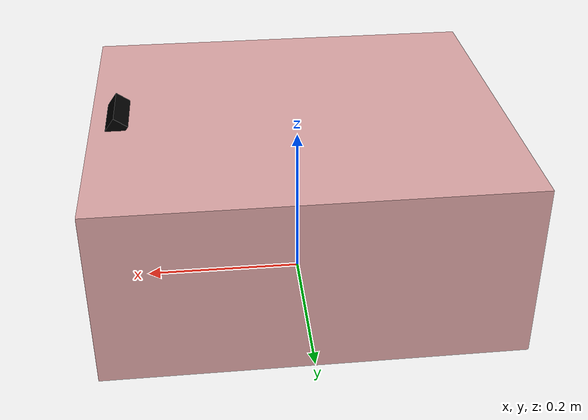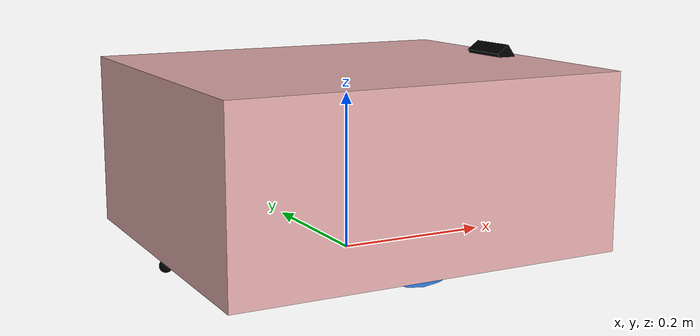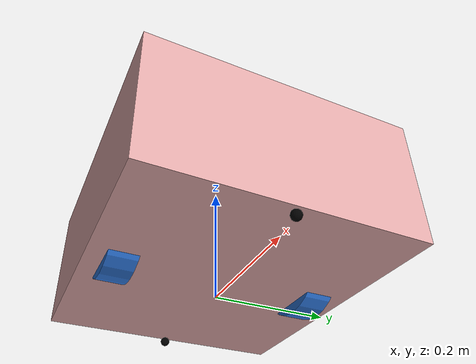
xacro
<?xml version="1.0"?>
<robot name="robot" xmlns:xacro="http://ros.org/wiki/xacro">

  <xacro:include filename="$(find description)/urdf/controllers/diff_drive_controller.urdf.xacro" />
  <xacro:include filename="$(find description)/urdf/property/robot_property.urdf.xacro" />
  <xacro:include filename="$(find description)/urdf/mech/base.urdf.xacro" />
  <xacro:include filename="$(find description)/urdf/mech/wheel.urdf.xacro" />
  <xacro:include filename="$(find description)/urdf/mech/caster_wheel.urdf.xacro" />
  <xacro:include filename="$(find description)/urdf/sensors/imu.urdf.xacro" />
  <xacro:include filename="$(find description)/urdf/sensors/laser.urdf.xacro" />
  <xacro:include filename="$(find description)/urdf/sensors/camera.urdf.xacro" />
  <xacro:include filename="$(find description)/urdf/sensors/range_sensor.urdf.xacro" />

  <xacro:base
    length="${base_length}"
    width="${base_width}"
    height="${base_height}"
    mass="${base_mass}"
    wheel_radius="${wheel_radius}"
    wheel_pos_x="${wheel_pos_x}"
    wheel_pos_z="${wheel_pos_z}"
/>

  <xacro:wheel
    side="left"
    radius="${wheel_radius}"
    width="${wheel_width}"
    pos_x="${wheel_pos_x}"
    pos_y="${wheel_pos_y}"
    pos_z="${wheel_pos_z}"
    mass="${wheel_mass}"
  />

  <xacro:wheel
    side="right"
    radius="${wheel_radius}"
    width="${wheel_width}"
    pos_x="${wheel_pos_x}"
    pos_y="${-wheel_pos_y}"
    pos_z="${wheel_pos_z}"
    mass="${wheel_mass}"
  />

  <xacro:caster_wheel
      side="front"
      mass="0.01"
      base_length="${base_length}"
      base_width="${base_width}"
      base_height="${base_height}"
      wheel_radius="${wheel_radius}"
      wheel_pos_z="${wheel_pos_z}"
    />

    <xacro:caster_wheel
      side="rear"
      mass="0.01"
      base_length="${base_length}"
      base_width="${base_width}"
      base_height="${base_height}"
      wheel_radius="${wheel_radius}"
      wheel_pos_z="${wheel_pos_z}"
    />

  <xacro:camera/>
  <xacro:imu/>
  <xacro:laser/>

  <xacro:range_sensor
    pos="center"
    pos_x="0.221"
    pos_y="0"
    pos_z="0.05"
    roll="0"
    yaw="0"
  />
  <xacro:range_sensor
    pos="left"
    pos_x="0.22"
    pos_y="0.19"
    pos_z="0.08"
    roll="1.57"
    yaw="0.6747"
  />
  <xacro:range_sensor
    pos="right"
    pos_x="0.22"
    pos_y="-0.19"
    pos_z="0.08"
    roll="1.57"
    yaw="-0.6747"
  />

</robot>

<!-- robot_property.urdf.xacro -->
<robot xmlns:xacro="http://ros.org/wiki/xacro">
  <xacro:property name="base_length" value="0.5" />
  <xacro:property name="base_width" value="0.44" />
  <xacro:property name="base_height" value="0.22" />
  <xacro:property name="base_mass" value="30" />

  <xacro:property name="wheel_radius" value="0.08255" />
  <xacro:property name="wheel_width" value="0.047" />
  <xacro:property name="wheel_pos_x" value="0.0" />
  <xacro:property name="wheel_pos_y" value="0.1665" />
  <xacro:property name="wheel_pos_z" value="-0.044" />
  <xacro:property name="wheel_mass" value="1.236" />
  <xacro:property name="wheel_torque" value="20" />

</robot>

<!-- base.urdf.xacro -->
<robot xmlns:xacro="http://ros.org/wiki/xacro">
  <xacro:macro name="base" params="length width height mass wheel_radius wheel_pos_x wheel_pos_z">
    <link name="base_footprint"/>

    <link name="base_link">
      <visual>
        <origin xyz="0 0 0" rpy="0 0 0"/>
        <geometry>
          <box size="${length} ${width} ${height}"/>
        </geometry>
        <material name="yellow">
          <color rgba="0.8784 0.6627 0.6627 1.0"/>
        </material>
      </visual>

      <collision>
        <origin xyz="0 0 0" rpy="0 0 0"/>
        <geometry>
          <box size="${length} ${width} ${height}"/>
        </geometry>
      </collision>

      <inertial>
        <origin xyz="0 0 0" rpy="0 0 0"/>
        <mass value="${mass}"/>
        <inertia ixx="${(1/12) * mass * ((width  * width)  + (height * height))}" ixy="0.0" ixz="0.0"
                 iyy="${(1/12) * mass * ((length * length) + (height * height))}" iyz="0.0"
                 izz="${(1/12) * mass * ((length * length) + (width  * width))}"/>
      </inertial>
    </link>

    <link name="center_footprint"/>

    <gazebo reference="base_link">
      <visual>
        <material>
          <ambient>0.8392 0.6314 0.0 1.0</ambient>
          <diffuse>0.8392 0.6314 0.0 1.0</diffuse>
          <specular>0.99 0.99 0.99 1.0</specular>
          <emissive>0.0 0.0 0.0 0.0</emissive>
        </material>
      </visual>
    </gazebo>

    <joint name="base_to_footprint" type="fixed">
      <parent link="base_footprint"/>
      <child link="base_link"/>
      <origin xyz="${-wheel_pos_x} 0 ${wheel_radius - wheel_pos_z}" rpy="0 0 0"/>
    </joint>

    <joint name="base_to_center_footprint" type="fixed">
      <parent link="base_footprint"/>
      <child link="center_footprint"/>
      <origin xyz="${-wheel_pos_x} 0 0" rpy="0 0 0"/>
    </joint>
  </xacro:macro>
</robot>

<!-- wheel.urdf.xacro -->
<robot xmlns:xacro="http://ros.org/wiki/xacro">
  <xacro:macro name="wheel" params="side radius width pos_x pos_y pos_z mass">
    <link name="${side}_wheel_link">
      <visual>
        <origin xyz="0 0 0" rpy="${pi/2} 0 0"/>
        <geometry>
          <cylinder radius="${radius}" length="${width}"/>
        </geometry>
        <material name="blue">
            <color rgba="0.1764 0.4588 0.8509 1.0"/>
        </material>
      </visual>
      <collision>
        <origin xyz="0 0 0" rpy="${pi/2} 0 0"/>
        <geometry>
          <cylinder radius="${radius}" length="${width}"/>
        </geometry>
      </collision>

      <inertial>
        <origin xyz="0 0 0" rpy="0 0 0"/>
        <mass value="${mass}"/>
        <inertia ixx="${(2/5) * mass * (radius * radius)}" ixy="0" ixz="0"
                 iyy="${(2/5) * mass * (radius * radius)}" iyz="0"
                 izz="${(2/5) * mass * (radius * radius)}" />
      </inertial>
    </link>
    <gazebo reference="${side}_wheel_link">
      <visual>
        <material>
          <ambient>0.1764 0.4588 0.8509 1.0</ambient>
          <diffuse>0.1764 0.4588 0.8509 1.0</diffuse>
          <specular>0.1764 0.4588 0.8509 1.0</specular>
          <emissive>0.0 0.0 0.0 0.0</emissive>
        </material>
      </visual>
      <mu1>1000000000000000.0</mu1>
      <mu2>1000000000000000.0</mu2>
      <kp>1000000000000.0</kp>
      <kd>10.0</kd>
      <minDepth>0.001</minDepth>
      <maxVel>0.1</maxVel>
      <fdir1>1 0 0</fdir1>
    </gazebo>
    <joint name="${side}_wheel_joint" type="continuous">
      <axis xyz="0 1 0" />
      <parent link="base_link"/>
      <child link="${side}_wheel_link"/>
      <origin xyz="${pos_x} ${pos_y} ${pos_z}" rpy="0 0 0"/>
    </joint>
  </xacro:macro>
</robot>

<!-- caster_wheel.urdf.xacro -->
<robot xmlns:xacro="http://ros.org/wiki/xacro">
  <xacro:macro name="caster_wheel" params="side mass base_length base_width base_height wheel_radius wheel_pos_z">
    <xacro:property name="caster_wheel_radius" value="${((wheel_radius - wheel_pos_z) - (base_height / 2)) / 2}" />

    <xacro:if value="${side == 'front'}">
        <xacro:property name="caster_wheel_x" value="${(base_length / 2) - caster_wheel_radius}" />
        <xacro:property name="caster_wheel_y" value="0" />
    </xacro:if>

    <xacro:if value="${side == 'rear'}">
        <xacro:property name="caster_wheel_x" value="${-(base_length / 2) + caster_wheel_radius}" />
        <xacro:property name="caster_wheel_y" value="0" />
    </xacro:if>

    <xacro:if value="${side == 'left'}"> <!-- rear -->
        <xacro:property name="caster_wheel_x" value="${-(base_length / 2) + caster_wheel_radius}" />
        <xacro:property name="caster_wheel_y" value="${(base_width / 2) - caster_wheel_radius}" />
    </xacro:if>

    <xacro:if value="${side == 'right'}"> <!-- rear -->
        <xacro:property name="caster_wheel_x" value="${-(base_length / 2) + caster_wheel_radius}" />
        <xacro:property name="caster_wheel_y" value="${-(base_width / 2) + caster_wheel_radius}" />
    </xacro:if>

    <link name="${side}_caster_wheel_link">
      <visual>
        <origin xyz="0 0 0" rpy="0 0 0"/>
        <geometry>
          <sphere radius="${caster_wheel_radius}" />
        </geometry>
        <material name="black">
            <color rgba="0.0 0.0 0.0 1.0"/>
        </material>
      </visual>

      <collision>
        <origin xyz="0 0 0" rpy="0 0 0"/>
        <geometry>
          <sphere radius="${caster_wheel_radius}" />
        </geometry>
      </collision>

      <inertial>
        <origin xyz="0 0 0" rpy="0 0 0"/>
        <mass value="${mass}"/>
        <inertia ixx="${(2/5) * mass * (caster_wheel_radius * caster_wheel_radius)}" ixy="0" ixz="0"
                 iyy="${(2/5) * mass * (caster_wheel_radius * caster_wheel_radius)}" iyz="0"
                 izz="${(2/5) * mass * (caster_wheel_radius * caster_wheel_radius)}" />
      </inertial>
    </link>

    <gazebo reference="${side}_caster_wheel_link">
        <mu1>0.01</mu1>
        <mu2>0.01</mu2>
    </gazebo>

    <joint name="${side}_caster_wheel_joint" type="fixed">
      <parent link="base_link"/>
      <child link="${side}_caster_wheel_link"/>
      <origin xyz="${caster_wheel_x} ${caster_wheel_y} ${-(base_height / 2 + caster_wheel_radius)}" rpy="0 0 0"/>
    </joint>
  </xacro:macro>
</robot>

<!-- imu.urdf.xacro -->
<robot xmlns:xacro="http://ros.org/wiki/xacro">

    <xacro:macro name="imu">
      <link name="imu_frame"/>

      <joint name="imu_to_base_link" type="fixed">
        <parent link="base_link"/>
        <child link="imu_frame"/>
        <origin xyz="0.178 0 0.075" rpy="0 0 0"/>
      </joint>

      <gazebo reference="imu_frame">
        <sensor name="imu_sensor" type="imu">

          <pose relative_to='imu_frame'>0 0 0 0 0 0</pose>
          <gz_frame_id>imu_frame</gz_frame_id>

          <plugin filename="gz-sim-imu-system"
                  name="gz::sim::systems::Imu">
          </plugin>

          <topic>imu</topic>
          <always_on>true</always_on>
          <update_rate>100</update_rate>
          <visualize>true</visualize>
          <imu>
            <angular_velocity>
              <x>
                <noise type="gaussian">
                  <mean>0.0</mean>
                  <stddev>2e-4</stddev>
                  <bias_mean>0.0000075</bias_mean>
                  <bias_stddev>0.0000008</bias_stddev>
                </noise>
              </x>
              <y>
                <noise type="gaussian">
                  <mean>0.0</mean>
                  <stddev>2e-4</stddev>
                  <bias_mean>0.0000075</bias_mean>
                  <bias_stddev>0.0000008</bias_stddev>
                </noise>
              </y>
              <z>
                <noise type="gaussian">
                  <mean>0.0</mean>
                  <stddev>2e-4</stddev>
                  <bias_mean>0.0000075</bias_mean>
                  <bias_stddev>0.0000008</bias_stddev>
                </noise>
              </z>
            </angular_velocity>
            <linear_acceleration>
              <x>
                <noise type="gaussian">
                  <mean>0.0</mean>
                  <stddev>1.7e-2</stddev>
                  <bias_mean>0.1</bias_mean>
                  <bias_stddev>0.001</bias_stddev>
                </noise>
              </x>
              <y>
                <noise type="gaussian">
                  <mean>0.0</mean>
                  <stddev>1.7e-2</stddev>
                  <bias_mean>0.1</bias_mean>
                  <bias_stddev>0.001</bias_stddev>
                </noise>
              </y>
              <z>
                <noise type="gaussian">
                  <mean>0.0</mean>
                  <stddev>1.7e-2</stddev>
                  <bias_mean>0.1</bias_mean>
                  <bias_stddev>0.001</bias_stddev>
                </noise>
              </z>
            </linear_acceleration>
          </imu>
        </sensor>
      </gazebo>

    </xacro:macro>
  </robot>

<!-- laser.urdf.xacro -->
<robot xmlns:xacro="http://ros.org/wiki/xacro">

    <xacro:macro name="laser">
      <link name="laser">
        <visual>
          <origin xyz="0 0 0" rpy="0 0 0"/>
          <geometry>
            <cylinder length="0.05" radius="0.0375"/>
          </geometry>
          <material name="green">
              <color rgba="0.003 0.639 0.223 1.0"/>
          </material>
        </visual>
        <collision>
          <origin xyz="0 0 0" rpy="0 0 0"/>
          <geometry>
            <cylinder length="0.05" radius="0.0375"/>
          </geometry>
        </collision>

        <inertial>
          <origin xyz="0 0 0" rpy="0 0 0"/>
          <mass value="0.1"/>
          <inertia ixx="${(2/5) * 0.1 * (0.0255 * 0.0255)}" ixy="0" ixz="0"
                   iyy="${(2/5) * 0.1 * (0.0255 * 0.0255)}" iyz="0"
                   izz="${(2/5) * 0.1 * (0.0255 * 0.0255)}" />
        </inertial>
      </link>

      <gazebo reference="laser">
        <visual>
          <material>
            <ambient>0.003 0.639 0.223 1.0</ambient>
            <diffuse>0.003 0.639 0.223 1.0</diffuse>
            <specular>0.003 0.639 0.223 1.0</specular>
            <emissive>0.0 0.0 0.0 0.0</emissive>
          </material>
        </visual>
      </gazebo>

      <joint name="laser_to_base_link" type="fixed">
        <parent link="base_link"/>
        <child link="laser"/>
        <origin xyz="0.0 0 0.066" rpy="0 0 3.144159265"/>
      </joint>

      <gazebo reference="laser">
        <sensor name='lidar' type='gpu_lidar'>
          <pose relative_to='laser'>0 0 0 0 0 0</pose>
          <gz_frame_id>laser</gz_frame_id>
          <topic>scan</topic>
          <update_rate>40</update_rate>
          <ray>
              <scan>
                  <horizontal>
                      <samples>640</samples>
                      <resolution>1</resolution>
                      <min_angle>0.0</min_angle>
                      <max_angle>6.28</max_angle>
                  </horizontal>
                  <vertical>
                      <samples>1</samples>
                      <resolution>0.01</resolution>
                      <min_angle>0</min_angle>
                      <max_angle>0</max_angle>
                  </vertical>
              </scan>
              <range>
                  <min>0.08</min>
                  <max>10.0</max>
                  <resolution>0.01</resolution>
              </range>
          </ray>
          <always_on>1</always_on>
          <visualize>true</visualize>
        </sensor>
      </gazebo>

    </xacro:macro>
  </robot>

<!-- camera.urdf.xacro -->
<robot xmlns:xacro="http://ros.org/wiki/xacro">

    <xacro:macro name="camera">
      <link name="rgbd_frame">
        <visual>
          <origin xyz="0 0 0" rpy="0 0 0"/>
          <geometry>
            <box size="0.02 0.07 0.03"/>
          </geometry>
          <material name="black">
            <color rgba="0 0 0 1"/>
          </material>
        </visual>

        <collision>
          <origin xyz="0 0 0" rpy="0 0 0"/>
          <geometry>
            <box size="0.02 0.07 0.03"/>
          </geometry>
        </collision>

        <inertial>
          <origin xyz="0 0 0" rpy="0 0 0"/>
          <mass value="0.1"/>
          <inertia ixx="${(1/12) * 0.1 * ((0.07  * 0.07)  + (0.03 * 0.03))}" ixy="0.0" ixz="0.0"
                   iyy="${(1/12) * 0.1 * ((0.02 * 0.02) + (0.03 * 0.03))}" iyz="0.0"
                   izz="${(1/12) * 0.1 * ((0.02 * 0.02) + (0.07  * 0.07))}"/>
        </inertial>

      </link>

      <joint name="camera_to_base_link" type="fixed">
        <parent link="base_link"/>
        <child link="rgbd_frame" />
        <origin xyz="0.221 0.0 0.108" rpy="0 -0.6106 0"/>
      </joint>

      <gazebo reference="rgbd_frame">
      <sensor type="depth" name="rgbd_sensor">
        <always_on>true</always_on>
        <update_rate>30.0</update_rate>
        <gz_frame_id>rgbd_frame</gz_frame_id>
        <topic>robot_cam</topic>
        <camera>
          <horizontal_fov>${63.0*3.144159265/180.0}</horizontal_fov>
          <image>
            <format>B8G8R8</format>
            <width>640</width>
            <height>480</height>
          </image>
          <clip>z
            <near>0.1</near>
            <far>8.0</far>
          </clip>
          <distortion>
            <k1>0.00000001</k1>
            <k2>0.00000001</k2>
            <k3>0.00000001</k3>
            <p1>0.00000001</p1>
            <p2>0.00000001</p2>
          </distortion>
        </camera>
        <plugin name="rgbd_frame_controller" filename="libgazebo_ros_camera.so">
          <camera_name>rgbd</camera_name>
          <frame_name>rgbd_frame</frame_name>
          <min_depth>0.1</min_depth>
          <max_depth>8.0</max_depth>
        </plugin>
      </sensor>
    </gazebo>

    </xacro:macro>
</robot>

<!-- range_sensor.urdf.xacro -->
<robot xmlns:xacro="http://ros.org/wiki/xacro">

    <xacro:macro name="range_sensor" params="pos pos_x pos_y pos_z roll yaw">
      <link name="${pos}_ranger_link">
        <visual>
            <origin xyz="0 0 0" rpy="0 0 0"/>
            <geometry>
                <box size="0.015 0.04 0.025"/>
            </geometry>
            <material name="black">
                <color rgba="0 0 0 1"/>
            </material>
        </visual>

        <collision>
            <origin xyz="0 0 0" rpy="0 0 0"/>
            <geometry>
                <box size="0.015 0.04 0.025"/>
            </geometry>
        </collision>
      </link>

      <joint name="${pos}_ranger_to_base_link" type="fixed">
        <parent link="base_link"/>
        <child link="${pos}_ranger_link"/>
        <origin xyz="${pos_x} ${pos_y} ${pos_z}" rpy="${roll} 0 ${yaw}"/>
      </joint>

      <gazebo reference="${pos}_ranger_link">
        <sensor type="gpu_ray" name="${pos}_range_sensor">
            <update_rate>30</update_rate>
            <always_on>true</always_on>
            <visualize>true</visualize>
            <ray>
              <scan>
                <horizontal>
                  <samples>10</samples>
                  <resolution>1</resolution>
                  <min_angle>-0.1308</min_angle>
                  <max_angle>0.1308</max_angle>
                </horizontal>
                <vertical>
                  <samples>10</samples>
                  <resolution>1</resolution>
                  <min_angle>-0.1308</min_angle>
                  <max_angle>0.1308</max_angle>
                </vertical>
              </scan>
              <range>
                <min>0.05</min>
                <max>0.50</max>
                <resolution>0.01</resolution>
              </range>
              <noise>
                <type>gaussian</type>
                <mean>0.0</mean>
                <stddev>0.01</stddev>
              </noise>
            </ray>

            <plugin name="ultrasonic_sensor_1" filename="libgazebo_ros_ray_sensor.so">
              <ros>
                <remapping>~/out:=${pos}_range</remapping>
              </ros>
              <output_type>sensor_msgs/Range</output_type>
              <radiation_type>ultrasound</radiation_type>
            </plugin>

          </sensor>
      </gazebo>

    </xacro:macro>
  </robot>
